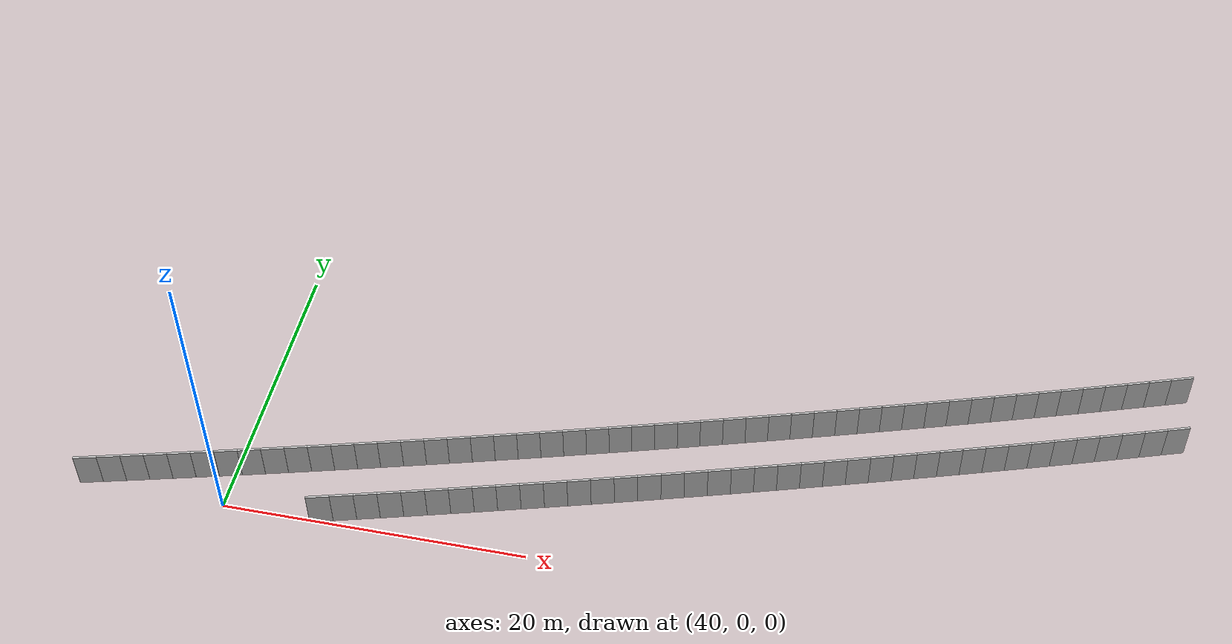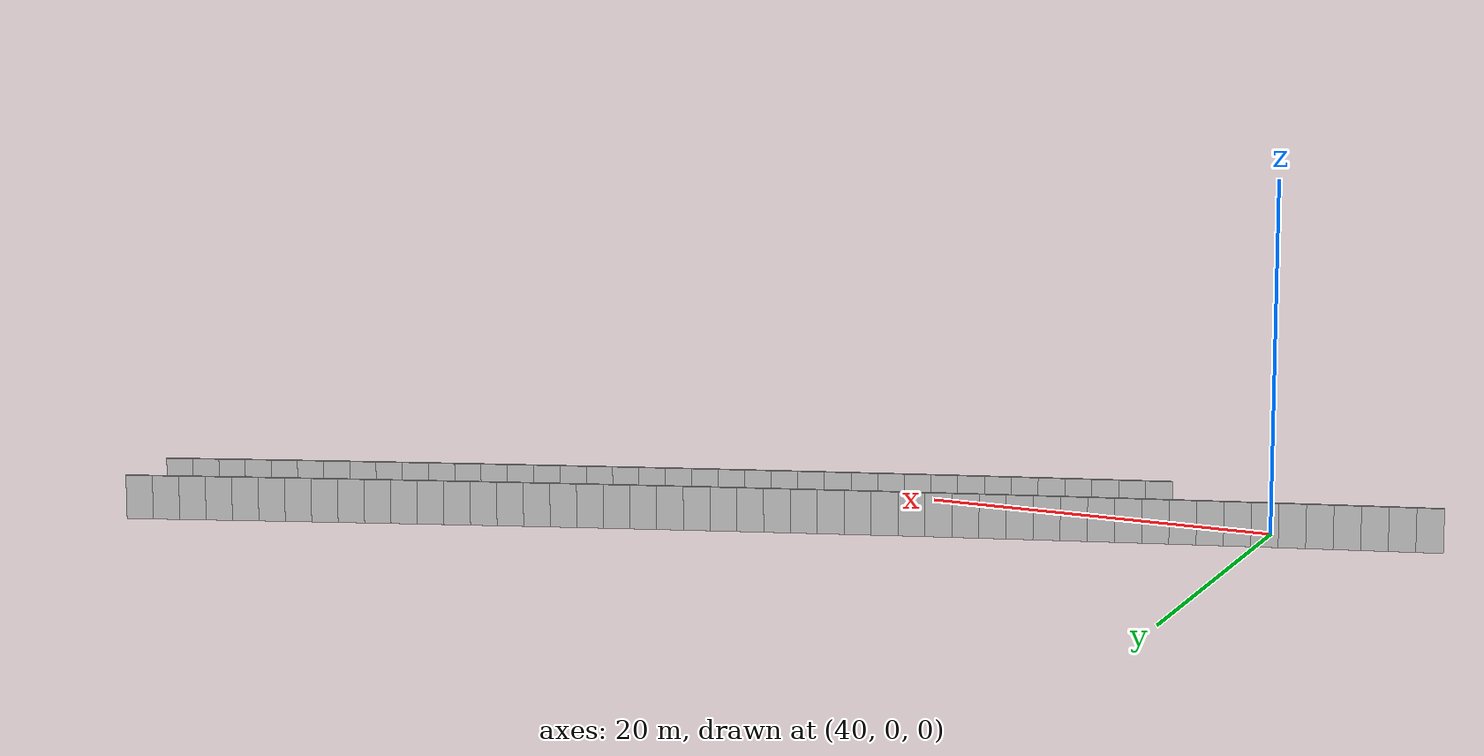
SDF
<?xml version="1.0" ?>
<sdf version="1.6">
  <model name="sps_1502">
    <pose frame="">0 0 0 0 -0 0</pose>
    <static>1</static>
    <self_collide>0</self_collide>
    <allow_auto_disable>0</allow_auto_disable>
    <link name="Wall3867">
      <kinematic>0</kinematic>
      <gravity>1</gravity>
      <self_collide>0</self_collide>
      <collision name="collision">
        <geometry>
          <box>
            <size>1.49657 0.15 2.5</size>
          </box>
        </geometry>
        <pose frame="">0 0 0 0 -0 0</pose>
      </collision>
      <visual name="visual">
        <geometry>
          <box>
            <size>1.49657 0.15 2.5</size>
          </box>
        </geometry>
        <pose frame="">0 0 0 0 -0 0</pose>
        <cast_shadows>1</cast_shadows>
        <transparency>0.0</transparency>
      </visual>
      <pose frame="">30.9653 0.212905 1.25 0 -0 0.257571</pose>
    </link>
    <link name="Wall3868">
      <kinematic>0</kinematic>
      <gravity>1</gravity>
      <self_collide>0</self_collide>
      <collision name="collision">
        <geometry>
          <box>
            <size>1.49658 0.15 2.5</size>
          </box>
        </geometry>
        <pose frame="">0 0 0 0 -0 0</pose>
      </collision>
      <visual name="visual">
        <geometry>
          <box>
            <size>1.49658 0.15 2.5</size>
          </box>
        </geometry>
        <pose frame="">0 0 0 0 -0 0</pose>
        <cast_shadows>1</cast_shadows>
        <transparency>0.0</transparency>
      </visual>
      <pose frame="">32.4122 0.59529 1.25 0 -0 0.259173</pose>
    </link>
    <link name="Wall3869">
      <kinematic>0</kinematic>
      <gravity>1</gravity>
      <self_collide>0</self_collide>
      <collision name="collision">
        <geometry>
          <box>
            <size>1.49645 0.15 2.5</size>
          </box>
        </geometry>
        <pose frame="">0 0 0 0 -0 0</pose>
      </collision>
      <visual name="visual">
        <geometry>
          <box>
            <size>1.49645 0.15 2.5</size>
          </box>
        </geometry>
        <pose frame="">0 0 0 0 -0 0</pose>
        <cast_shadows>1</cast_shadows>
        <transparency>0.0</transparency>
      </visual>
      <pose frame="">33.8584 0.980086 1.25 0 -0 0.260926</pose>
    </link>
    <link name="Wall3870">
      <kinematic>0</kinematic>
      <gravity>1</gravity>
      <self_collide>0</self_collide>
      <collision name="collision">
        <geometry>
          <box>
            <size>1.49637 0.15 2.5</size>
          </box>
        </geometry>
        <pose frame="">0 0 0 0 -0 0</pose>
      </collision>
      <visual name="visual">
        <geometry>
          <box>
            <size>1.49637 0.15 2.5</size>
          </box>
        </geometry>
        <pose frame="">0 0 0 0 -0 0</pose>
        <cast_shadows>1</cast_shadows>
        <transparency>0.0</transparency>
      </visual>
      <pose frame="">35.3039 1.36711 1.25 0 -0 0.262292</pose>
    </link>
    <link name="Wall3871">
      <kinematic>0</kinematic>
      <gravity>1</gravity>
      <self_collide>0</self_collide>
      <collision name="collision">
        <geometry>
          <box>
            <size>1.49663 0.15 2.5</size>
          </box>
        </geometry>
        <pose frame="">0 0 0 0 -0 0</pose>
      </collision>
      <visual name="visual">
        <geometry>
          <box>
            <size>1.49663 0.15 2.5</size>
          </box>
        </geometry>
        <pose frame="">0 0 0 0 -0 0</pose>
        <cast_shadows>1</cast_shadows>
        <transparency>0.0</transparency>
      </visual>
      <pose frame="">36.7489 1.7563 1.25 0 -0 0.263891</pose>
    </link>
    <link name="Wall3872">
      <kinematic>0</kinematic>
      <gravity>1</gravity>
      <self_collide>0</self_collide>
      <collision name="collision">
        <geometry>
          <box>
            <size>1.49638 0.15 2.5</size>
          </box>
        </geometry>
        <pose frame="">0 0 0 0 -0 0</pose>
      </collision>
      <visual name="visual">
        <geometry>
          <box>
            <size>1.49638 0.15 2.5</size>
          </box>
        </geometry>
        <pose frame="">0 0 0 0 -0 0</pose>
        <cast_shadows>1</cast_shadows>
        <transparency>0.0</transparency>
      </visual>
      <pose frame="">38.1933 2.14778 1.25 0 -0 0.265458</pose>
    </link>
    <link name="Wall3873">
      <kinematic>0</kinematic>
      <gravity>1</gravity>
      <self_collide>0</self_collide>
      <collision name="collision">
        <geometry>
          <box>
            <size>1.49667 0.15 2.5</size>
          </box>
        </geometry>
        <pose frame="">0 0 0 0 -0 0</pose>
      </collision>
      <visual name="visual">
        <geometry>
          <box>
            <size>1.49667 0.15 2.5</size>
          </box>
        </geometry>
        <pose frame="">0 0 0 0 -0 0</pose>
        <cast_shadows>1</cast_shadows>
        <transparency>0.0</transparency>
      </visual>
      <pose frame="">39.637 2.54158 1.25 0 -0 0.267096</pose>
    </link>
    <link name="Wall3874">
      <kinematic>0</kinematic>
      <gravity>1</gravity>
      <self_collide>0</self_collide>
      <collision name="collision">
        <geometry>
          <box>
            <size>1.49649 0.15 2.5</size>
          </box>
        </geometry>
        <pose frame="">0 0 0 0 -0 0</pose>
      </collision>
      <visual name="visual">
        <geometry>
          <box>
            <size>1.49649 0.15 2.5</size>
          </box>
        </geometry>
        <pose frame="">0 0 0 0 -0 0</pose>
        <cast_shadows>1</cast_shadows>
        <transparency>0.0</transparency>
      </visual>
      <pose frame="">41.0803 2.9377 1.25 0 -0 0.268652</pose>
    </link>
    <link name="Wall3875">
      <kinematic>0</kinematic>
      <gravity>1</gravity>
      <self_collide>0</self_collide>
      <collision name="collision">
        <geometry>
          <box>
            <size>1.49654 0.15 2.5</size>
          </box>
        </geometry>
        <pose frame="">0 0 0 0 -0 0</pose>
      </collision>
      <visual name="visual">
        <geometry>
          <box>
            <size>1.49654 0.15 2.5</size>
          </box>
        </geometry>
        <pose frame="">0 0 0 0 -0 0</pose>
        <cast_shadows>1</cast_shadows>
        <transparency>0.0</transparency>
      </visual>
      <pose frame="">42.5228 3.3361 1.25 0 -0 0.270294</pose>
    </link>
    <link name="Wall3876">
      <kinematic>0</kinematic>
      <gravity>1</gravity>
      <self_collide>0</self_collide>
      <collision name="collision">
        <geometry>
          <box>
            <size>1.49658 0.15 2.5</size>
          </box>
        </geometry>
        <pose frame="">0 0 0 0 -0 0</pose>
      </collision>
      <visual name="visual">
        <geometry>
          <box>
            <size>1.49658 0.15 2.5</size>
          </box>
        </geometry>
        <pose frame="">0 0 0 0 -0 0</pose>
        <cast_shadows>1</cast_shadows>
        <transparency>0.0</transparency>
      </visual>
      <pose frame="">43.9647 3.73689 1.25 0 -0 0.271936</pose>
    </link>
    <link name="Wall3877">
      <kinematic>0</kinematic>
      <gravity>1</gravity>
      <self_collide>0</self_collide>
      <collision name="collision">
        <geometry>
          <box>
            <size>1.49654 0.15 2.5</size>
          </box>
        </geometry>
        <pose frame="">0 0 0 0 -0 0</pose>
      </collision>
      <visual name="visual">
        <geometry>
          <box>
            <size>1.49654 0.15 2.5</size>
          </box>
        </geometry>
        <pose frame="">0 0 0 0 -0 0</pose>
        <cast_shadows>1</cast_shadows>
        <transparency>0.0</transparency>
      </visual>
      <pose frame="">45.4059 4.13988 1.25 0 -0 0.273342</pose>
    </link>
    <link name="Wall3878">
      <kinematic>0</kinematic>
      <gravity>1</gravity>
      <self_collide>0</self_collide>
      <collision name="collision">
        <geometry>
          <box>
            <size>1.4965 0.15 2.5</size>
          </box>
        </geometry>
        <pose frame="">0 0 0 0 -0 0</pose>
      </collision>
      <visual name="visual">
        <geometry>
          <box>
            <size>1.4965 0.15 2.5</size>
          </box>
        </geometry>
        <pose frame="">0 0 0 0 -0 0</pose>
        <cast_shadows>1</cast_shadows>
        <transparency>0.0</transparency>
      </visual>
      <pose frame="">46.8465 4.54509 1.25 0 -0 0.275045</pose>
    </link>
    <link name="Wall3879">
      <kinematic>0</kinematic>
      <gravity>1</gravity>
      <self_collide>0</self_collide>
      <collision name="collision">
        <geometry>
          <box>
            <size>1.4965 0.15 2.5</size>
          </box>
        </geometry>
        <pose frame="">0 0 0 0 -0 0</pose>
      </collision>
      <visual name="visual">
        <geometry>
          <box>
            <size>1.4965 0.15 2.5</size>
          </box>
        </geometry>
        <pose frame="">0 0 0 0 -0 0</pose>
        <cast_shadows>1</cast_shadows>
        <transparency>0.0</transparency>
      </visual>
      <pose frame="">48.2865 4.95271 1.25 0 -0 0.276697</pose>
    </link>
    <link name="Wall3880">
      <kinematic>0</kinematic>
      <gravity>1</gravity>
      <self_collide>0</self_collide>
      <collision name="collision">
        <geometry>
          <box>
            <size>1.49655 0.15 2.5</size>
          </box>
        </geometry>
        <pose frame="">0 0 0 0 -0 0</pose>
      </collision>
      <visual name="visual">
        <geometry>
          <box>
            <size>1.49655 0.15 2.5</size>
          </box>
        </geometry>
        <pose frame="">0 0 0 0 -0 0</pose>
        <cast_shadows>1</cast_shadows>
        <transparency>0.0</transparency>
      </visual>
      <pose frame="">49.7258 5.36259 1.25 0 -0 0.278171</pose>
    </link>
    <link name="Wall3881">
      <kinematic>0</kinematic>
      <gravity>1</gravity>
      <self_collide>0</self_collide>
      <collision name="collision">
        <geometry>
          <box>
            <size>1.49653 0.15 2.5</size>
          </box>
        </geometry>
        <pose frame="">0 0 0 0 -0 0</pose>
      </collision>
      <visual name="visual">
        <geometry>
          <box>
            <size>1.49653 0.15 2.5</size>
          </box>
        </geometry>
        <pose frame="">0 0 0 0 -0 0</pose>
        <cast_shadows>1</cast_shadows>
        <transparency>0.0</transparency>
      </visual>
      <pose frame="">51.1645 5.77467 1.25 0 -0 0.279745</pose>
    </link>
    <link name="Wall3882">
      <kinematic>0</kinematic>
      <gravity>1</gravity>
      <self_collide>0</self_collide>
      <collision name="collision">
        <geometry>
          <box>
            <size>1.49666 0.15 2.5</size>
          </box>
        </geometry>
        <pose frame="">0 0 0 0 -0 0</pose>
      </collision>
      <visual name="visual">
        <geometry>
          <box>
            <size>1.49666 0.15 2.5</size>
          </box>
        </geometry>
        <pose frame="">0 0 0 0 -0 0</pose>
        <cast_shadows>1</cast_shadows>
        <transparency>0.0</transparency>
      </visual>
      <pose frame="">52.6025 6.18907 1.25 0 -0 0.281375</pose>
    </link>
    <link name="Wall3883">
      <kinematic>0</kinematic>
      <gravity>1</gravity>
      <self_collide>0</self_collide>
      <collision name="collision">
        <geometry>
          <box>
            <size>1.49653 0.15 2.5</size>
          </box>
        </geometry>
        <pose frame="">0 0 0 0 -0 0</pose>
      </collision>
      <visual name="visual">
        <geometry>
          <box>
            <size>1.49653 0.15 2.5</size>
          </box>
        </geometry>
        <pose frame="">0 0 0 0 -0 0</pose>
        <cast_shadows>1</cast_shadows>
        <transparency>0.0</transparency>
      </visual>
      <pose frame="">54.0399 6.60579 1.25 0 -0 0.282972</pose>
    </link>
    <link name="Wall3884">
      <kinematic>0</kinematic>
      <gravity>1</gravity>
      <self_collide>0</self_collide>
      <collision name="collision">
        <geometry>
          <box>
            <size>1.49659 0.15 2.5</size>
          </box>
        </geometry>
        <pose frame="">0 0 0 0 -0 0</pose>
      </collision>
      <visual name="visual">
        <geometry>
          <box>
            <size>1.49659 0.15 2.5</size>
          </box>
        </geometry>
        <pose frame="">0 0 0 0 -0 0</pose>
        <cast_shadows>1</cast_shadows>
        <transparency>0.0</transparency>
      </visual>
      <pose frame="">55.4766 7.02479 1.25 0 -0 0.284574</pose>
    </link>
    <link name="Wall3885">
      <kinematic>0</kinematic>
      <gravity>1</gravity>
      <self_collide>0</self_collide>
      <collision name="collision">
        <geometry>
          <box>
            <size>1.49641 0.15 2.5</size>
          </box>
        </geometry>
        <pose frame="">0 0 0 0 -0 0</pose>
      </collision>
      <visual name="visual">
        <geometry>
          <box>
            <size>1.49641 0.15 2.5</size>
          </box>
        </geometry>
        <pose frame="">0 0 0 0 -0 0</pose>
        <cast_shadows>1</cast_shadows>
        <transparency>0.0</transparency>
      </visual>
      <pose frame="">56.9127 7.446 1.25 0 -0 0.286054</pose>
    </link>
    <link name="Wall3886">
      <kinematic>0</kinematic>
      <gravity>1</gravity>
      <self_collide>0</self_collide>
      <collision name="collision">
        <geometry>
          <box>
            <size>1.49649 0.15 2.5</size>
          </box>
        </geometry>
        <pose frame="">0 0 0 0 -0 0</pose>
      </collision>
      <visual name="visual">
        <geometry>
          <box>
            <size>1.49649 0.15 2.5</size>
          </box>
        </geometry>
        <pose frame="">0 0 0 0 -0 0</pose>
        <cast_shadows>1</cast_shadows>
        <transparency>0.0</transparency>
      </visual>
      <pose frame="">58.348 7.8694 1.25 0 -0 0.287656</pose>
    </link>
    <link name="Wall3887">
      <kinematic>0</kinematic>
      <gravity>1</gravity>
      <self_collide>0</self_collide>
      <collision name="collision">
        <geometry>
          <box>
            <size>1.4966 0.15 2.5</size>
          </box>
        </geometry>
        <pose frame="">0 0 0 0 -0 0</pose>
      </collision>
      <visual name="visual">
        <geometry>
          <box>
            <size>1.4966 0.15 2.5</size>
          </box>
        </geometry>
        <pose frame="">0 0 0 0 -0 0</pose>
        <cast_shadows>1</cast_shadows>
        <transparency>0.0</transparency>
      </visual>
      <pose frame="">59.7826 8.29518 1.25 0 -0 0.289336</pose>
    </link>
    <link name="Wall3888">
      <kinematic>0</kinematic>
      <gravity>1</gravity>
      <self_collide>0</self_collide>
      <collision name="collision">
        <geometry>
          <box>
            <size>1.4967 0.15 2.5</size>
          </box>
        </geometry>
        <pose frame="">0 0 0 0 -0 0</pose>
      </collision>
      <visual name="visual">
        <geometry>
          <box>
            <size>1.4967 0.15 2.5</size>
          </box>
        </geometry>
        <pose frame="">0 0 0 0 -0 0</pose>
        <cast_shadows>1</cast_shadows>
        <transparency>0.0</transparency>
      </visual>
      <pose frame="">61.2168 8.72328 1.25 0 -0 0.290847</pose>
    </link>
    <link name="Wall3889">
      <kinematic>0</kinematic>
      <gravity>1</gravity>
      <self_collide>0</self_collide>
      <collision name="collision">
        <geometry>
          <box>
            <size>1.49634 0.15 2.5</size>
          </box>
        </geometry>
        <pose frame="">0 0 0 0 -0 0</pose>
      </collision>
      <visual name="visual">
        <geometry>
          <box>
            <size>1.49634 0.15 2.5</size>
          </box>
        </geometry>
        <pose frame="">0 0 0 0 -0 0</pose>
        <cast_shadows>1</cast_shadows>
        <transparency>0.0</transparency>
      </visual>
      <pose frame="">62.6501 9.15358 1.25 0 -0 0.292453</pose>
    </link>
    <link name="Wall3890">
      <kinematic>0</kinematic>
      <gravity>1</gravity>
      <self_collide>0</self_collide>
      <collision name="collision">
        <geometry>
          <box>
            <size>1.49656 0.15 2.5</size>
          </box>
        </geometry>
        <pose frame="">0 0 0 0 -0 0</pose>
      </collision>
      <visual name="visual">
        <geometry>
          <box>
            <size>1.49656 0.15 2.5</size>
          </box>
        </geometry>
        <pose frame="">0 0 0 0 -0 0</pose>
        <cast_shadows>1</cast_shadows>
        <transparency>0.0</transparency>
      </visual>
      <pose frame="">64.0827 9.58607 1.25 0 -0 0.293941</pose>
    </link>
    <link name="Wall3891">
      <kinematic>0</kinematic>
      <gravity>1</gravity>
      <self_collide>0</self_collide>
      <collision name="collision">
        <geometry>
          <box>
            <size>1.49651 0.15 2.5</size>
          </box>
        </geometry>
        <pose frame="">0 0 0 0 -0 0</pose>
      </collision>
      <visual name="visual">
        <geometry>
          <box>
            <size>1.49651 0.15 2.5</size>
          </box>
        </geometry>
        <pose frame="">0 0 0 0 -0 0</pose>
        <cast_shadows>1</cast_shadows>
        <transparency>0.0</transparency>
      </visual>
      <pose frame="">65.5146 10.0209 1.25 0 -0 0.295656</pose>
    </link>
    <link name="Wall3892">
      <kinematic>0</kinematic>
      <gravity>1</gravity>
      <self_collide>0</self_collide>
      <collision name="collision">
        <geometry>
          <box>
            <size>1.49651 0.15 2.5</size>
          </box>
        </geometry>
        <pose frame="">0 0 0 0 -0 0</pose>
      </collision>
      <visual name="visual">
        <geometry>
          <box>
            <size>1.49651 0.15 2.5</size>
          </box>
        </geometry>
        <pose frame="">0 0 0 0 -0 0</pose>
        <cast_shadows>1</cast_shadows>
        <transparency>0.0</transparency>
      </visual>
      <pose frame="">66.9459 10.4581 1.25 0 -0 0.29732</pose>
    </link>
    <link name="Wall3893">
      <kinematic>0</kinematic>
      <gravity>1</gravity>
      <self_collide>0</self_collide>
      <collision name="collision">
        <geometry>
          <box>
            <size>1.49667 0.15 2.5</size>
          </box>
        </geometry>
        <pose frame="">0 0 0 0 -0 0</pose>
      </collision>
      <visual name="visual">
        <geometry>
          <box>
            <size>1.49667 0.15 2.5</size>
          </box>
        </geometry>
        <pose frame="">0 0 0 0 -0 0</pose>
        <cast_shadows>1</cast_shadows>
        <transparency>0.0</transparency>
      </visual>
      <pose frame="">68.3765 10.8976 1.25 0 -0 0.298781</pose>
    </link>
    <link name="Wall3894">
      <kinematic>0</kinematic>
      <gravity>1</gravity>
      <self_collide>0</self_collide>
      <collision name="collision">
        <geometry>
          <box>
            <size>1.49646 0.15 2.5</size>
          </box>
        </geometry>
        <pose frame="">0 0 0 0 -0 0</pose>
      </collision>
      <visual name="visual">
        <geometry>
          <box>
            <size>1.49646 0.15 2.5</size>
          </box>
        </geometry>
        <pose frame="">0 0 0 0 -0 0</pose>
        <cast_shadows>1</cast_shadows>
        <transparency>0.0</transparency>
      </visual>
      <pose frame="">69.8064 11.3393 1.25 0 -0 0.300403</pose>
    </link>
    <link name="Wall3895">
      <kinematic>0</kinematic>
      <gravity>1</gravity>
      <self_collide>0</self_collide>
      <collision name="collision">
        <geometry>
          <box>
            <size>1.49647 0.15 2.5</size>
          </box>
        </geometry>
        <pose frame="">0 0 0 0 -0 0</pose>
      </collision>
      <visual name="visual">
        <geometry>
          <box>
            <size>1.49647 0.15 2.5</size>
          </box>
        </geometry>
        <pose frame="">0 0 0 0 -0 0</pose>
        <cast_shadows>1</cast_shadows>
        <transparency>0.0</transparency>
      </visual>
      <pose frame="">71.2355 11.7832 1.25 0 -0 0.301938</pose>
    </link>
    <link name="Wall3896">
      <kinematic>0</kinematic>
      <gravity>1</gravity>
      <self_collide>0</self_collide>
      <collision name="collision">
        <geometry>
          <box>
            <size>1.49665 0.15 2.5</size>
          </box>
        </geometry>
        <pose frame="">0 0 0 0 -0 0</pose>
      </collision>
      <visual name="visual">
        <geometry>
          <box>
            <size>1.49665 0.15 2.5</size>
          </box>
        </geometry>
        <pose frame="">0 0 0 0 -0 0</pose>
        <cast_shadows>1</cast_shadows>
        <transparency>0.0</transparency>
      </visual>
      <pose frame="">72.664 12.2294 1.25 0 -0 0.303566</pose>
    </link>
    <link name="Wall3897">
      <kinematic>0</kinematic>
      <gravity>1</gravity>
      <self_collide>0</self_collide>
      <collision name="collision">
        <geometry>
          <box>
            <size>1.49644 0.15 2.5</size>
          </box>
        </geometry>
        <pose frame="">0 0 0 0 -0 0</pose>
      </collision>
      <visual name="visual">
        <geometry>
          <box>
            <size>1.49644 0.15 2.5</size>
          </box>
        </geometry>
        <pose frame="">0 0 0 0 -0 0</pose>
        <cast_shadows>1</cast_shadows>
        <transparency>0.0</transparency>
      </visual>
      <pose frame="">74.0918 12.6778 1.25 0 -0 0.305021</pose>
    </link>
    <link name="Wall3898">
      <kinematic>0</kinematic>
      <gravity>1</gravity>
      <self_collide>0</self_collide>
      <collision name="collision">
        <geometry>
          <box>
            <size>1.49648 0.15 2.5</size>
          </box>
        </geometry>
        <pose frame="">0 0 0 0 -0 0</pose>
      </collision>
      <visual name="visual">
        <geometry>
          <box>
            <size>1.49648 0.15 2.5</size>
          </box>
        </geometry>
        <pose frame="">0 0 0 0 -0 0</pose>
        <cast_shadows>1</cast_shadows>
        <transparency>0.0</transparency>
      </visual>
      <pose frame="">75.5188 13.1284 1.25 0 -0 0.306724</pose>
    </link>
    <link name="Wall3899">
      <kinematic>0</kinematic>
      <gravity>1</gravity>
      <self_collide>0</self_collide>
      <collision name="collision">
        <geometry>
          <box>
            <size>1.49654 0.15 2.5</size>
          </box>
        </geometry>
        <pose frame="">0 0 0 0 -0 0</pose>
      </collision>
      <visual name="visual">
        <geometry>
          <box>
            <size>1.49654 0.15 2.5</size>
          </box>
        </geometry>
        <pose frame="">0 0 0 0 -0 0</pose>
        <cast_shadows>1</cast_shadows>
        <transparency>0.0</transparency>
      </visual>
      <pose frame="">76.9451 13.5814 1.25 0 -0 0.308337</pose>
    </link>
    <link name="Wall3900">
      <kinematic>0</kinematic>
      <gravity>1</gravity>
      <self_collide>0</self_collide>
      <collision name="collision">
        <geometry>
          <box>
            <size>1.49646 0.15 2.5</size>
          </box>
        </geometry>
        <pose frame="">0 0 0 0 -0 0</pose>
      </collision>
      <visual name="visual">
        <geometry>
          <box>
            <size>1.49646 0.15 2.5</size>
          </box>
        </geometry>
        <pose frame="">0 0 0 0 -0 0</pose>
        <cast_shadows>1</cast_shadows>
        <transparency>0.0</transparency>
      </visual>
      <pose frame="">78.3707 14.0366 1.25 0 -0 0.309768</pose>
    </link>
    <link name="Wall3901">
      <kinematic>0</kinematic>
      <gravity>1</gravity>
      <self_collide>0</self_collide>
      <collision name="collision">
        <geometry>
          <box>
            <size>1.49656 0.15 2.5</size>
          </box>
        </geometry>
        <pose frame="">0 0 0 0 -0 0</pose>
      </collision>
      <visual name="visual">
        <geometry>
          <box>
            <size>1.49656 0.15 2.5</size>
          </box>
        </geometry>
        <pose frame="">0 0 0 0 -0 0</pose>
        <cast_shadows>1</cast_shadows>
        <transparency>0.0</transparency>
      </visual>
      <pose frame="">79.7956 14.494 1.25 0 -0 0.311459</pose>
    </link>
    <link name="Wall3902">
      <kinematic>0</kinematic>
      <gravity>1</gravity>
      <self_collide>0</self_collide>
      <collision name="collision">
        <geometry>
          <box>
            <size>1.49677 0.15 2.5</size>
          </box>
        </geometry>
        <pose frame="">0 0 0 0 -0 0</pose>
      </collision>
      <visual name="visual">
        <geometry>
          <box>
            <size>1.49677 0.15 2.5</size>
          </box>
        </geometry>
        <pose frame="">0 0 0 0 -0 0</pose>
        <cast_shadows>1</cast_shadows>
        <transparency>0.0</transparency>
      </visual>
      <pose frame="">81.2198 14.9538 1.25 0 -0 0.313085</pose>
    </link>
    <link name="Wall3903">
      <kinematic>0</kinematic>
      <gravity>1</gravity>
      <self_collide>0</self_collide>
      <collision name="collision">
        <geometry>
          <box>
            <size>1.49652 0.15 2.5</size>
          </box>
        </geometry>
        <pose frame="">0 0 0 0 -0 0</pose>
      </collision>
      <visual name="visual">
        <geometry>
          <box>
            <size>1.49652 0.15 2.5</size>
          </box>
        </geometry>
        <pose frame="">0 0 0 0 -0 0</pose>
        <cast_shadows>1</cast_shadows>
        <transparency>0.0</transparency>
      </visual>
      <pose frame="">82.6434 15.4159 1.25 0 -0 0.314683</pose>
    </link>
    <link name="Wall3904">
      <kinematic>0</kinematic>
      <gravity>1</gravity>
      <self_collide>0</self_collide>
      <collision name="collision">
        <geometry>
          <box>
            <size>1.49657 0.15 2.5</size>
          </box>
        </geometry>
        <pose frame="">0 0 0 0 -0 0</pose>
      </collision>
      <visual name="visual">
        <geometry>
          <box>
            <size>1.49657 0.15 2.5</size>
          </box>
        </geometry>
        <pose frame="">0 0 0 0 -0 0</pose>
        <cast_shadows>1</cast_shadows>
        <transparency>0.0</transparency>
      </visual>
      <pose frame="">84.0661 15.8802 1.25 0 -0 0.316218</pose>
    </link>
    <link name="Wall3905">
      <kinematic>0</kinematic>
      <gravity>1</gravity>
      <self_collide>0</self_collide>
      <collision name="collision">
        <geometry>
          <box>
            <size>1.49627 0.15 2.5</size>
          </box>
        </geometry>
        <pose frame="">0 0 0 0 -0 0</pose>
      </collision>
      <visual name="visual">
        <geometry>
          <box>
            <size>1.49627 0.15 2.5</size>
          </box>
        </geometry>
        <pose frame="">0 0 0 0 -0 0</pose>
        <cast_shadows>1</cast_shadows>
        <transparency>0.0</transparency>
      </visual>
      <pose frame="">85.4879 16.3466 1.25 0 -0 0.3177</pose>
    </link>
    <link name="Wall3906">
      <kinematic>0</kinematic>
      <gravity>1</gravity>
      <self_collide>0</self_collide>
      <collision name="collision">
        <geometry>
          <box>
            <size>1.49657 0.15 2.5</size>
          </box>
        </geometry>
        <pose frame="">0 0 0 0 -0 0</pose>
      </collision>
      <visual name="visual">
        <geometry>
          <box>
            <size>1.49657 0.15 2.5</size>
          </box>
        </geometry>
        <pose frame="">0 0 0 0 -0 0</pose>
        <cast_shadows>1</cast_shadows>
        <transparency>0.0</transparency>
      </visual>
      <pose frame="">86.909 16.8153 1.25 0 -0 0.319481</pose>
    </link>
    <link name="Wall3907">
      <kinematic>0</kinematic>
      <gravity>1</gravity>
      <self_collide>0</self_collide>
      <collision name="collision">
        <geometry>
          <box>
            <size>1.4966 0.15 2.5</size>
          </box>
        </geometry>
        <pose frame="">0 0 0 0 -0 0</pose>
      </collision>
      <visual name="visual">
        <geometry>
          <box>
            <size>1.4966 0.15 2.5</size>
          </box>
        </geometry>
        <pose frame="">0 0 0 0 -0 0</pose>
        <cast_shadows>1</cast_shadows>
        <transparency>0.0</transparency>
      </visual>
      <pose frame="">88.3296 17.2864 1.25 0 -0 0.320977</pose>
    </link>
    <link name="Wall3908">
      <kinematic>0</kinematic>
      <gravity>1</gravity>
      <self_collide>0</self_collide>
      <collision name="collision">
        <geometry>
          <box>
            <size>1.49662 0.15 2.5</size>
          </box>
        </geometry>
        <pose frame="">0 0 0 0 -0 0</pose>
      </collision>
      <visual name="visual">
        <geometry>
          <box>
            <size>1.49662 0.15 2.5</size>
          </box>
        </geometry>
        <pose frame="">0 0 0 0 -0 0</pose>
        <cast_shadows>1</cast_shadows>
        <transparency>0.0</transparency>
      </visual>
      <pose frame="">89.7494 17.7597 1.25 0 -0 0.322563</pose>
    </link>
    <link name="Wall3909">
      <kinematic>0</kinematic>
      <gravity>1</gravity>
      <self_collide>0</self_collide>
      <collision name="collision">
        <geometry>
          <box>
            <size>1.49649 0.15 2.5</size>
          </box>
        </geometry>
        <pose frame="">0 0 0 0 -0 0</pose>
      </collision>
      <visual name="visual">
        <geometry>
          <box>
            <size>1.49649 0.15 2.5</size>
          </box>
        </geometry>
        <pose frame="">0 0 0 0 -0 0</pose>
        <cast_shadows>1</cast_shadows>
        <transparency>0.0</transparency>
      </visual>
      <pose frame="">91.1684 18.2352 1.25 0 -0 0.324098</pose>
    </link>
    <link name="Wall3910">
      <kinematic>0</kinematic>
      <gravity>1</gravity>
      <self_collide>0</self_collide>
      <collision name="collision">
        <geometry>
          <box>
            <size>1.49652 0.15 2.5</size>
          </box>
        </geometry>
        <pose frame="">0 0 0 0 -0 0</pose>
      </collision>
      <visual name="visual">
        <geometry>
          <box>
            <size>1.49652 0.15 2.5</size>
          </box>
        </geometry>
        <pose frame="">0 0 0 0 -0 0</pose>
        <cast_shadows>1</cast_shadows>
        <transparency>0.0</transparency>
      </visual>
      <pose frame="">92.5865 18.713 1.25 0 -0 0.325813</pose>
    </link>
    <link name="Wall3911">
      <kinematic>0</kinematic>
      <gravity>1</gravity>
      <self_collide>0</self_collide>
      <collision name="collision">
        <geometry>
          <box>
            <size>1.49647 0.15 2.5</size>
          </box>
        </geometry>
        <pose frame="">0 0 0 0 -0 0</pose>
      </collision>
      <visual name="visual">
        <geometry>
          <box>
            <size>1.49647 0.15 2.5</size>
          </box>
        </geometry>
        <pose frame="">0 0 0 0 -0 0</pose>
        <cast_shadows>1</cast_shadows>
        <transparency>0.0</transparency>
      </visual>
      <pose frame="">94.004 19.193 1.25 0 -0 0.327245</pose>
    </link>
    <link name="Wall3912">
      <kinematic>0</kinematic>
      <gravity>1</gravity>
      <self_collide>0</self_collide>
      <collision name="collision">
        <geometry>
          <box>
            <size>1.4966 0.15 2.5</size>
          </box>
        </geometry>
        <pose frame="">0 0 0 0 -0 0</pose>
      </collision>
      <visual name="visual">
        <geometry>
          <box>
            <size>1.4966 0.15 2.5</size>
          </box>
        </geometry>
        <pose frame="">0 0 0 0 -0 0</pose>
        <cast_shadows>1</cast_shadows>
        <transparency>0.0</transparency>
      </visual>
      <pose frame="">95.4207 19.6752 1.25 0 -0 0.328895</pose>
    </link>
    <link name="Wall3913">
      <kinematic>0</kinematic>
      <gravity>1</gravity>
      <self_collide>0</self_collide>
      <collision name="collision">
        <geometry>
          <box>
            <size>1.49656 0.15 2.5</size>
          </box>
        </geometry>
        <pose frame="">0 0 0 0 -0 0</pose>
      </collision>
      <visual name="visual">
        <geometry>
          <box>
            <size>1.49656 0.15 2.5</size>
          </box>
        </geometry>
        <pose frame="">0 0 0 0 -0 0</pose>
        <cast_shadows>1</cast_shadows>
        <transparency>0.0</transparency>
      </visual>
      <pose frame="">96.8367 20.1597 1.25 0 -0 0.330456</pose>
    </link>
    <link name="Wall3914">
      <kinematic>0</kinematic>
      <gravity>1</gravity>
      <self_collide>0</self_collide>
      <collision name="collision">
        <geometry>
          <box>
            <size>1.49652 0.15 2.5</size>
          </box>
        </geometry>
        <pose frame="">0 0 0 0 -0 0</pose>
      </collision>
      <visual name="visual">
        <geometry>
          <box>
            <size>1.49652 0.15 2.5</size>
          </box>
        </geometry>
        <pose frame="">0 0 0 0 -0 0</pose>
        <cast_shadows>1</cast_shadows>
        <transparency>0.0</transparency>
      </visual>
      <pose frame="">98.2519 20.6464 1.25 0 -0 0.332017</pose>
    </link>
    <link name="Wall3915">
      <kinematic>0</kinematic>
      <gravity>1</gravity>
      <self_collide>0</self_collide>
      <collision name="collision">
        <geometry>
          <box>
            <size>1.49657 0.15 2.5</size>
          </box>
        </geometry>
        <pose frame="">0 0 0 0 -0 0</pose>
      </collision>
      <visual name="visual">
        <geometry>
          <box>
            <size>1.49657 0.15 2.5</size>
          </box>
        </geometry>
        <pose frame="">0 0 0 0 -0 0</pose>
        <cast_shadows>1</cast_shadows>
        <transparency>0.0</transparency>
      </visual>
      <pose frame="">99.6663 21.1354 1.25 0 -0 0.333732</pose>
    </link>
    <link name="Wall7652">
      <kinematic>0</kinematic>
      <gravity>1</gravity>
      <self_collide>0</self_collide>
      <collision name="collision">
        <geometry>
          <box>
            <size>1.50308 0.15 2.5</size>
          </box>
        </geometry>
        <pose frame="">0 0 0 0 -0 0</pose>
      </collision>
      <visual name="visual">
        <geometry>
          <box>
            <size>1.50308 0.15 2.5</size>
          </box>
        </geometry>
        <pose frame="">0 0 0 0 -0 0</pose>
        <cast_shadows>1</cast_shadows>
        <transparency>0.0</transparency>
      </visual>
      <pose frame="">46.5265 0.153884 1.25 0 -0 0.273514</pose>
    </link>
    <link name="Wall7653">
      <kinematic>0</kinematic>
      <gravity>1</gravity>
      <self_collide>0</self_collide>
      <collision name="collision">
        <geometry>
          <box>
            <size>1.50309 0.15 2.5</size>
          </box>
        </geometry>
        <pose frame="">0 0 0 0 -0 0</pose>
      </collision>
      <visual name="visual">
        <geometry>
          <box>
            <size>1.50309 0.15 2.5</size>
          </box>
        </geometry>
        <pose frame="">0 0 0 0 -0 0</pose>
        <cast_shadows>1</cast_shadows>
        <transparency>0.0</transparency>
      </visual>
      <pose frame="">47.9734 0.560988 1.25 0 -0 0.275031</pose>
    </link>
    <link name="Wall7654">
      <kinematic>0</kinematic>
      <gravity>1</gravity>
      <self_collide>0</self_collide>
      <collision name="collision">
        <geometry>
          <box>
            <size>1.50315 0.15 2.5</size>
          </box>
        </geometry>
        <pose frame="">0 0 0 0 -0 0</pose>
      </collision>
      <visual name="visual">
        <geometry>
          <box>
            <size>1.50315 0.15 2.5</size>
          </box>
        </geometry>
        <pose frame="">0 0 0 0 -0 0</pose>
        <cast_shadows>1</cast_shadows>
        <transparency>0.0</transparency>
      </visual>
      <pose frame="">49.4197 0.970382 1.25 0 -0 0.276665</pose>
    </link>
    <link name="Wall7655">
      <kinematic>0</kinematic>
      <gravity>1</gravity>
      <self_collide>0</self_collide>
      <collision name="collision">
        <geometry>
          <box>
            <size>1.50318 0.15 2.5</size>
          </box>
        </geometry>
        <pose frame="">0 0 0 0 -0 0</pose>
      </collision>
      <visual name="visual">
        <geometry>
          <box>
            <size>1.50318 0.15 2.5</size>
          </box>
        </geometry>
        <pose frame="">0 0 0 0 -0 0</pose>
        <cast_shadows>1</cast_shadows>
        <transparency>0.0</transparency>
      </visual>
      <pose frame="">50.8653 1.38209 1.25 0 -0 0.278222</pose>
    </link>
    <link name="Wall7656">
      <kinematic>0</kinematic>
      <gravity>1</gravity>
      <self_collide>0</self_collide>
      <collision name="collision">
        <geometry>
          <box>
            <size>1.50306 0.15 2.5</size>
          </box>
        </geometry>
        <pose frame="">0 0 0 0 -0 0</pose>
      </collision>
      <visual name="visual">
        <geometry>
          <box>
            <size>1.50306 0.15 2.5</size>
          </box>
        </geometry>
        <pose frame="">0 0 0 0 -0 0</pose>
        <cast_shadows>1</cast_shadows>
        <transparency>0.0</transparency>
      </visual>
      <pose frame="">52.3104 1.796 1.25 0 -0 0.279722</pose>
    </link>
    <link name="Wall7657">
      <kinematic>0</kinematic>
      <gravity>1</gravity>
      <self_collide>0</self_collide>
      <collision name="collision">
        <geometry>
          <box>
            <size>1.50309 0.15 2.5</size>
          </box>
        </geometry>
        <pose frame="">0 0 0 0 -0 0</pose>
      </collision>
      <visual name="visual">
        <geometry>
          <box>
            <size>1.50309 0.15 2.5</size>
          </box>
        </geometry>
        <pose frame="">0 0 0 0 -0 0</pose>
        <cast_shadows>1</cast_shadows>
        <transparency>0.0</transparency>
      </visual>
      <pose frame="">53.7547 2.2122 1.25 0 -0 0.281406</pose>
    </link>
    <link name="Wall7658">
      <kinematic>0</kinematic>
      <gravity>1</gravity>
      <self_collide>0</self_collide>
      <collision name="collision">
        <geometry>
          <box>
            <size>1.50316 0.15 2.5</size>
          </box>
        </geometry>
        <pose frame="">0 0 0 0 -0 0</pose>
      </collision>
      <visual name="visual">
        <geometry>
          <box>
            <size>1.50316 0.15 2.5</size>
          </box>
        </geometry>
        <pose frame="">0 0 0 0 -0 0</pose>
        <cast_shadows>1</cast_shadows>
        <transparency>0.0</transparency>
      </visual>
      <pose frame="">55.1984 2.63069 1.25 0 -0 0.282873</pose>
    </link>
    <link name="Wall7659">
      <kinematic>0</kinematic>
      <gravity>1</gravity>
      <self_collide>0</self_collide>
      <collision name="collision">
        <geometry>
          <box>
            <size>1.50302 0.15 2.5</size>
          </box>
        </geometry>
        <pose frame="">0 0 0 0 -0 0</pose>
      </collision>
      <visual name="visual">
        <geometry>
          <box>
            <size>1.50302 0.15 2.5</size>
          </box>
        </geometry>
        <pose frame="">0 0 0 0 -0 0</pose>
        <cast_shadows>1</cast_shadows>
        <transparency>0.0</transparency>
      </visual>
      <pose frame="">56.6413 3.05147 1.25 0 -0 0.284592</pose>
    </link>
    <link name="Wall7660">
      <kinematic>0</kinematic>
      <gravity>1</gravity>
      <self_collide>0</self_collide>
      <collision name="collision">
        <geometry>
          <box>
            <size>1.50313 0.15 2.5</size>
          </box>
        </geometry>
        <pose frame="">0 0 0 0 -0 0</pose>
      </collision>
      <visual name="visual">
        <geometry>
          <box>
            <size>1.50313 0.15 2.5</size>
          </box>
        </geometry>
        <pose frame="">0 0 0 0 -0 0</pose>
        <cast_shadows>1</cast_shadows>
        <transparency>0.0</transparency>
      </visual>
      <pose frame="">58.0836 3.47459 1.25 0 -0 0.286136</pose>
    </link>
    <link name="Wall7661">
      <kinematic>0</kinematic>
      <gravity>1</gravity>
      <self_collide>0</self_collide>
      <collision name="collision">
        <geometry>
          <box>
            <size>1.50298 0.15 2.5</size>
          </box>
        </geometry>
        <pose frame="">0 0 0 0 -0 0</pose>
      </collision>
      <visual name="visual">
        <geometry>
          <box>
            <size>1.50298 0.15 2.5</size>
          </box>
        </geometry>
        <pose frame="">0 0 0 0 -0 0</pose>
        <cast_shadows>1</cast_shadows>
        <transparency>0.0</transparency>
      </visual>
      <pose frame="">59.5253 3.89992 1.25 0 -0 0.287649</pose>
    </link>
    <link name="Wall7662">
      <kinematic>0</kinematic>
      <gravity>1</gravity>
      <self_collide>0</self_collide>
      <collision name="collision">
        <geometry>
          <box>
            <size>1.50307 0.15 2.5</size>
          </box>
        </geometry>
        <pose frame="">0 0 0 0 -0 0</pose>
      </collision>
      <visual name="visual">
        <geometry>
          <box>
            <size>1.50307 0.15 2.5</size>
          </box>
        </geometry>
        <pose frame="">0 0 0 0 -0 0</pose>
        <cast_shadows>1</cast_shadows>
        <transparency>0.0</transparency>
      </visual>
      <pose frame="">60.9662 4.3275 1.25 0 -0 0.289283</pose>
    </link>
    <link name="Wall7663">
      <kinematic>0</kinematic>
      <gravity>1</gravity>
      <self_collide>0</self_collide>
      <collision name="collision">
        <geometry>
          <box>
            <size>1.50307 0.15 2.5</size>
          </box>
        </geometry>
        <pose frame="">0 0 0 0 -0 0</pose>
      </collision>
      <visual name="visual">
        <geometry>
          <box>
            <size>1.50307 0.15 2.5</size>
          </box>
        </geometry>
        <pose frame="">0 0 0 0 -0 0</pose>
        <cast_shadows>1</cast_shadows>
        <transparency>0.0</transparency>
      </visual>
      <pose frame="">62.4065 4.7574 1.25 0 -0 0.29085</pose>
    </link>
    <link name="Wall7664">
      <kinematic>0</kinematic>
      <gravity>1</gravity>
      <self_collide>0</self_collide>
      <collision name="collision">
        <geometry>
          <box>
            <size>1.50304 0.15 2.5</size>
          </box>
        </geometry>
        <pose frame="">0 0 0 0 -0 0</pose>
      </collision>
      <visual name="visual">
        <geometry>
          <box>
            <size>1.50304 0.15 2.5</size>
          </box>
        </geometry>
        <pose frame="">0 0 0 0 -0 0</pose>
        <cast_shadows>1</cast_shadows>
        <transparency>0.0</transparency>
      </visual>
      <pose frame="">63.846 5.18959 1.25 0 -0 0.292468</pose>
    </link>
    <link name="Wall7665">
      <kinematic>0</kinematic>
      <gravity>1</gravity>
      <self_collide>0</self_collide>
      <collision name="collision">
        <geometry>
          <box>
            <size>1.5031 0.15 2.5</size>
          </box>
        </geometry>
        <pose frame="">0 0 0 0 -0 0</pose>
      </collision>
      <visual name="visual">
        <geometry>
          <box>
            <size>1.5031 0.15 2.5</size>
          </box>
        </geometry>
        <pose frame="">0 0 0 0 -0 0</pose>
        <cast_shadows>1</cast_shadows>
        <transparency>0.0</transparency>
      </visual>
      <pose frame="">65.2849 5.62407 1.25 0 -0 0.294024</pose>
    </link>
    <link name="Wall7666">
      <kinematic>0</kinematic>
      <gravity>1</gravity>
      <self_collide>0</self_collide>
      <collision name="collision">
        <geometry>
          <box>
            <size>1.50322 0.15 2.5</size>
          </box>
        </geometry>
        <pose frame="">0 0 0 0 -0 0</pose>
      </collision>
      <visual name="visual">
        <geometry>
          <box>
            <size>1.50322 0.15 2.5</size>
          </box>
        </geometry>
        <pose frame="">0 0 0 0 -0 0</pose>
        <cast_shadows>1</cast_shadows>
        <transparency>0.0</transparency>
      </visual>
      <pose frame="">66.7233 6.06077 1.25 0 -0 0.295529</pose>
    </link>
    <link name="Wall7667">
      <kinematic>0</kinematic>
      <gravity>1</gravity>
      <self_collide>0</self_collide>
      <collision name="collision">
        <geometry>
          <box>
            <size>1.50293 0.15 2.5</size>
          </box>
        </geometry>
        <pose frame="">0 0 0 0 -0 0</pose>
      </collision>
      <visual name="visual">
        <geometry>
          <box>
            <size>1.50293 0.15 2.5</size>
          </box>
        </geometry>
        <pose frame="">0 0 0 0 -0 0</pose>
        <cast_shadows>1</cast_shadows>
        <transparency>0.0</transparency>
      </visual>
      <pose frame="">68.1608 6.49989 1.25 0 -0 0.297412</pose>
    </link>
    <link name="Wall7668">
      <kinematic>0</kinematic>
      <gravity>1</gravity>
      <self_collide>0</self_collide>
      <collision name="collision">
        <geometry>
          <box>
            <size>1.50321 0.15 2.5</size>
          </box>
        </geometry>
        <pose frame="">0 0 0 0 -0 0</pose>
      </collision>
      <visual name="visual">
        <geometry>
          <box>
            <size>1.50321 0.15 2.5</size>
          </box>
        </geometry>
        <pose frame="">0 0 0 0 -0 0</pose>
        <cast_shadows>1</cast_shadows>
        <transparency>0.0</transparency>
      </visual>
      <pose frame="">69.5976 6.9413 1.25 0 -0 0.298714</pose>
    </link>
    <link name="Wall7669">
      <kinematic>0</kinematic>
      <gravity>1</gravity>
      <self_collide>0</self_collide>
      <collision name="collision">
        <geometry>
          <box>
            <size>1.50312 0.15 2.5</size>
          </box>
        </geometry>
        <pose frame="">0 0 0 0 -0 0</pose>
      </collision>
      <visual name="visual">
        <geometry>
          <box>
            <size>1.50312 0.15 2.5</size>
          </box>
        </geometry>
        <pose frame="">0 0 0 0 -0 0</pose>
        <cast_shadows>1</cast_shadows>
        <transparency>0.0</transparency>
      </visual>
      <pose frame="">71.0338 7.3849 1.25 0 -0 0.300433</pose>
    </link>
    <link name="Wall7670">
      <kinematic>0</kinematic>
      <gravity>1</gravity>
      <self_collide>0</self_collide>
      <collision name="collision">
        <geometry>
          <box>
            <size>1.50299 0.15 2.5</size>
          </box>
        </geometry>
        <pose frame="">0 0 0 0 -0 0</pose>
      </collision>
      <visual name="visual">
        <geometry>
          <box>
            <size>1.50299 0.15 2.5</size>
          </box>
        </geometry>
        <pose frame="">0 0 0 0 -0 0</pose>
        <cast_shadows>1</cast_shadows>
        <transparency>0.0</transparency>
      </visual>
      <pose frame="">72.4692 7.83079 1.25 0 -0 0.301947</pose>
    </link>
    <link name="Wall7671">
      <kinematic>0</kinematic>
      <gravity>1</gravity>
      <self_collide>0</self_collide>
      <collision name="collision">
        <geometry>
          <box>
            <size>1.50314 0.15 2.5</size>
          </box>
        </geometry>
        <pose frame="">0 0 0 0 -0 0</pose>
      </collision>
      <visual name="visual">
        <geometry>
          <box>
            <size>1.50314 0.15 2.5</size>
          </box>
        </geometry>
        <pose frame="">0 0 0 0 -0 0</pose>
        <cast_shadows>1</cast_shadows>
        <transparency>0.0</transparency>
      </visual>
      <pose frame="">73.9039 8.27898 1.25 0 -0 0.303619</pose>
    </link>
    <link name="Wall7672">
      <kinematic>0</kinematic>
      <gravity>1</gravity>
      <self_collide>0</self_collide>
      <collision name="collision">
        <geometry>
          <box>
            <size>1.50316 0.15 2.5</size>
          </box>
        </geometry>
        <pose frame="">0 0 0 0 -0 0</pose>
      </collision>
      <visual name="visual">
        <geometry>
          <box>
            <size>1.50316 0.15 2.5</size>
          </box>
        </geometry>
        <pose frame="">0 0 0 0 -0 0</pose>
        <cast_shadows>1</cast_shadows>
        <transparency>0.0</transparency>
      </visual>
      <pose frame="">75.3379 8.72938 1.25 0 -0 0.305019</pose>
    </link>
    <link name="Wall7673">
      <kinematic>0</kinematic>
      <gravity>1</gravity>
      <self_collide>0</self_collide>
      <collision name="collision">
        <geometry>
          <box>
            <size>1.503 0.15 2.5</size>
          </box>
        </geometry>
        <pose frame="">0 0 0 0 -0 0</pose>
      </collision>
      <visual name="visual">
        <geometry>
          <box>
            <size>1.503 0.15 2.5</size>
          </box>
        </geometry>
        <pose frame="">0 0 0 0 -0 0</pose>
        <cast_shadows>1</cast_shadows>
        <transparency>0.0</transparency>
      </visual>
      <pose frame="">76.7712 9.18208 1.25 0 -0 0.306841</pose>
    </link>
    <link name="Wall7674">
      <kinematic>0</kinematic>
      <gravity>1</gravity>
      <self_collide>0</self_collide>
      <collision name="collision">
        <geometry>
          <box>
            <size>1.50326 0.15 2.5</size>
          </box>
        </geometry>
        <pose frame="">0 0 0 0 -0 0</pose>
      </collision>
      <visual name="visual">
        <geometry>
          <box>
            <size>1.50326 0.15 2.5</size>
          </box>
        </geometry>
        <pose frame="">0 0 0 0 -0 0</pose>
        <cast_shadows>1</cast_shadows>
        <transparency>0.0</transparency>
      </visual>
      <pose frame="">78.2038 9.63707 1.25 0 -0 0.308192</pose>
    </link>
    <link name="Wall7675">
      <kinematic>0</kinematic>
      <gravity>1</gravity>
      <self_collide>0</self_collide>
      <collision name="collision">
        <geometry>
          <box>
            <size>1.50302 0.15 2.5</size>
          </box>
        </geometry>
        <pose frame="">0 0 0 0 -0 0</pose>
      </collision>
      <visual name="visual">
        <geometry>
          <box>
            <size>1.50302 0.15 2.5</size>
          </box>
        </geometry>
        <pose frame="">0 0 0 0 -0 0</pose>
        <cast_shadows>1</cast_shadows>
        <transparency>0.0</transparency>
      </visual>
      <pose frame="">79.6358 10.0943 1.25 0 -0 0.309949</pose>
    </link>
    <link name="Wall7676">
      <kinematic>0</kinematic>
      <gravity>1</gravity>
      <self_collide>0</self_collide>
      <collision name="collision">
        <geometry>
          <box>
            <size>1.50309 0.15 2.5</size>
          </box>
        </geometry>
        <pose frame="">0 0 0 0 -0 0</pose>
      </collision>
      <visual name="visual">
        <geometry>
          <box>
            <size>1.50309 0.15 2.5</size>
          </box>
        </geometry>
        <pose frame="">0 0 0 0 -0 0</pose>
        <cast_shadows>1</cast_shadows>
        <transparency>0.0</transparency>
      </visual>
      <pose frame="">81.0669 10.5538 1.25 0 -0 0.311426</pose>
    </link>
    <link name="Wall7677">
      <kinematic>0</kinematic>
      <gravity>1</gravity>
      <self_collide>0</self_collide>
      <collision name="collision">
        <geometry>
          <box>
            <size>1.50303 0.15 2.5</size>
          </box>
        </geometry>
        <pose frame="">0 0 0 0 -0 0</pose>
      </collision>
      <visual name="visual">
        <geometry>
          <box>
            <size>1.50303 0.15 2.5</size>
          </box>
        </geometry>
        <pose frame="">0 0 0 0 -0 0</pose>
        <cast_shadows>1</cast_shadows>
        <transparency>0.0</transparency>
      </visual>
      <pose frame="">82.4972 11.0155 1.25 0 -0 0.313018</pose>
    </link>
    <link name="Wall7678">
      <kinematic>0</kinematic>
      <gravity>1</gravity>
      <self_collide>0</self_collide>
      <collision name="collision">
        <geometry>
          <box>
            <size>1.50324 0.15 2.5</size>
          </box>
        </geometry>
        <pose frame="">0 0 0 0 -0 0</pose>
      </collision>
      <visual name="visual">
        <geometry>
          <box>
            <size>1.50324 0.15 2.5</size>
          </box>
        </geometry>
        <pose frame="">0 0 0 0 -0 0</pose>
        <cast_shadows>1</cast_shadows>
        <transparency>0.0</transparency>
      </visual>
      <pose frame="">83.927 11.4795 1.25 0 -0 0.314637</pose>
    </link>
    <link name="Wall7679">
      <kinematic>0</kinematic>
      <gravity>1</gravity>
      <self_collide>0</self_collide>
      <collision name="collision">
        <geometry>
          <box>
            <size>1.50311 0.15 2.5</size>
          </box>
        </geometry>
        <pose frame="">0 0 0 0 -0 0</pose>
      </collision>
      <visual name="visual">
        <geometry>
          <box>
            <size>1.50311 0.15 2.5</size>
          </box>
        </geometry>
        <pose frame="">0 0 0 0 -0 0</pose>
        <cast_shadows>1</cast_shadows>
        <transparency>0.0</transparency>
      </visual>
      <pose frame="">85.356 11.9458 1.25 0 -0 0.316203</pose>
    </link>
    <link name="Wall7680">
      <kinematic>0</kinematic>
      <gravity>1</gravity>
      <self_collide>0</self_collide>
      <collision name="collision">
        <geometry>
          <box>
            <size>1.50304 0.15 2.5</size>
          </box>
        </geometry>
        <pose frame="">0 0 0 0 -0 0</pose>
      </collision>
      <visual name="visual">
        <geometry>
          <box>
            <size>1.50304 0.15 2.5</size>
          </box>
        </geometry>
        <pose frame="">0 0 0 0 -0 0</pose>
        <cast_shadows>1</cast_shadows>
        <transparency>0.0</transparency>
      </visual>
      <pose frame="">86.7842 12.4143 1.25 0 -0 0.317757</pose>
    </link>
    <link name="Wall7681">
      <kinematic>0</kinematic>
      <gravity>1</gravity>
      <self_collide>0</self_collide>
      <collision name="collision">
        <geometry>
          <box>
            <size>1.50303 0.15 2.5</size>
          </box>
        </geometry>
        <pose frame="">0 0 0 0 -0 0</pose>
      </collision>
      <visual name="visual">
        <geometry>
          <box>
            <size>1.50303 0.15 2.5</size>
          </box>
        </geometry>
        <pose frame="">0 0 0 0 -0 0</pose>
        <cast_shadows>1</cast_shadows>
        <transparency>0.0</transparency>
      </visual>
      <pose frame="">88.2116 12.8851 1.25 0 -0 0.319426</pose>
    </link>
    <link name="Wall7682">
      <kinematic>0</kinematic>
      <gravity>1</gravity>
      <self_collide>0</self_collide>
      <collision name="collision">
        <geometry>
          <box>
            <size>1.50297 0.15 2.5</size>
          </box>
        </geometry>
        <pose frame="">0 0 0 0 -0 0</pose>
      </collision>
      <visual name="visual">
        <geometry>
          <box>
            <size>1.50297 0.15 2.5</size>
          </box>
        </geometry>
        <pose frame="">0 0 0 0 -0 0</pose>
        <cast_shadows>1</cast_shadows>
        <transparency>0.0</transparency>
      </visual>
      <pose frame="">89.6382 13.3582 1.25 0 -0 0.32098</pose>
    </link>
    <link name="Wall7683">
      <kinematic>0</kinematic>
      <gravity>1</gravity>
      <self_collide>0</self_collide>
      <collision name="collision">
        <geometry>
          <box>
            <size>1.50309 0.15 2.5</size>
          </box>
        </geometry>
        <pose frame="">0 0 0 0 -0 0</pose>
      </collision>
      <visual name="visual">
        <geometry>
          <box>
            <size>1.50309 0.15 2.5</size>
          </box>
        </geometry>
        <pose frame="">0 0 0 0 -0 0</pose>
        <cast_shadows>1</cast_shadows>
        <transparency>0.0</transparency>
      </visual>
      <pose frame="">91.0641 13.8335 1.25 0 -0 0.322495</pose>
    </link>
    <link name="Wall7684">
      <kinematic>0</kinematic>
      <gravity>1</gravity>
      <self_collide>0</self_collide>
      <collision name="collision">
        <geometry>
          <box>
            <size>1.50311 0.15 2.5</size>
          </box>
        </geometry>
        <pose frame="">0 0 0 0 -0 0</pose>
      </collision>
      <visual name="visual">
        <geometry>
          <box>
            <size>1.50311 0.15 2.5</size>
          </box>
        </geometry>
        <pose frame="">0 0 0 0 -0 0</pose>
        <cast_shadows>1</cast_shadows>
        <transparency>0.0</transparency>
      </visual>
      <pose frame="">92.4893 14.3111 1.25 0 -0 0.324203</pose>
    </link>
    <link name="Wall7685">
      <kinematic>0</kinematic>
      <gravity>1</gravity>
      <self_collide>0</self_collide>
      <collision name="collision">
        <geometry>
          <box>
            <size>1.503 0.15 2.5</size>
          </box>
        </geometry>
        <pose frame="">0 0 0 0 -0 0</pose>
      </collision>
      <visual name="visual">
        <geometry>
          <box>
            <size>1.503 0.15 2.5</size>
          </box>
        </geometry>
        <pose frame="">0 0 0 0 -0 0</pose>
        <cast_shadows>1</cast_shadows>
        <transparency>0.0</transparency>
      </visual>
      <pose frame="">93.9137 14.791 1.25 0 -0 0.32577</pose>
    </link>
    <link name="Wall7686">
      <kinematic>0</kinematic>
      <gravity>1</gravity>
      <self_collide>0</self_collide>
      <collision name="collision">
        <geometry>
          <box>
            <size>1.50317 0.15 2.5</size>
          </box>
        </geometry>
        <pose frame="">0 0 0 0 -0 0</pose>
      </collision>
      <visual name="visual">
        <geometry>
          <box>
            <size>1.50317 0.15 2.5</size>
          </box>
        </geometry>
        <pose frame="">0 0 0 0 -0 0</pose>
        <cast_shadows>1</cast_shadows>
        <transparency>0.0</transparency>
      </visual>
      <pose frame="">95.3373 15.2731 1.25 0 -0 0.327233</pose>
    </link>
    <link name="Wall7687">
      <kinematic>0</kinematic>
      <gravity>1</gravity>
      <self_collide>0</self_collide>
      <collision name="collision">
        <geometry>
          <box>
            <size>1.50322 0.15 2.5</size>
          </box>
        </geometry>
        <pose frame="">0 0 0 0 -0 0</pose>
      </collision>
      <visual name="visual">
        <geometry>
          <box>
            <size>1.50322 0.15 2.5</size>
          </box>
        </geometry>
        <pose frame="">0 0 0 0 -0 0</pose>
        <cast_shadows>1</cast_shadows>
        <transparency>0.0</transparency>
      </visual>
      <pose frame="">96.7603 15.7575 1.25 0 -0 0.328979</pose>
    </link>
    <link name="Wall7688">
      <kinematic>0</kinematic>
      <gravity>1</gravity>
      <self_collide>0</self_collide>
      <collision name="collision">
        <geometry>
          <box>
            <size>1.50291 0.15 2.5</size>
          </box>
        </geometry>
        <pose frame="">0 0 0 0 -0 0</pose>
      </collision>
      <visual name="visual">
        <geometry>
          <box>
            <size>1.50291 0.15 2.5</size>
          </box>
        </geometry>
        <pose frame="">0 0 0 0 -0 0</pose>
        <cast_shadows>1</cast_shadows>
        <transparency>0.0</transparency>
      </visual>
      <pose frame="">98.1825 16.2441 1.25 0 -0 0.330381</pose>
    </link>
    <link name="Wall7689">
      <kinematic>0</kinematic>
      <gravity>1</gravity>
      <self_collide>0</self_collide>
      <collision name="collision">
        <geometry>
          <box>
            <size>1.50309 0.15 2.5</size>
          </box>
        </geometry>
        <pose frame="">0 0 0 0 -0 0</pose>
      </collision>
      <visual name="visual">
        <geometry>
          <box>
            <size>1.50309 0.15 2.5</size>
          </box>
        </geometry>
        <pose frame="">0 0 0 0 -0 0</pose>
        <cast_shadows>1</cast_shadows>
        <transparency>0.0</transparency>
      </visual>
      <pose frame="">99.6038 16.7329 1.25 0 -0 0.332101</pose>
    </link>
  </model>
</sdf>
